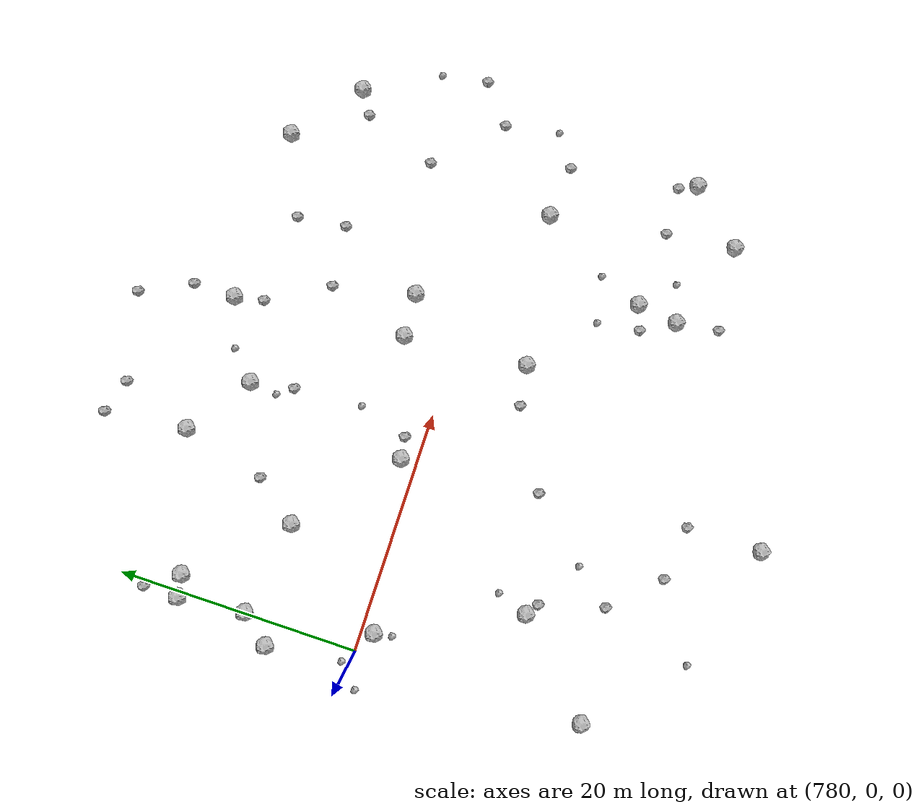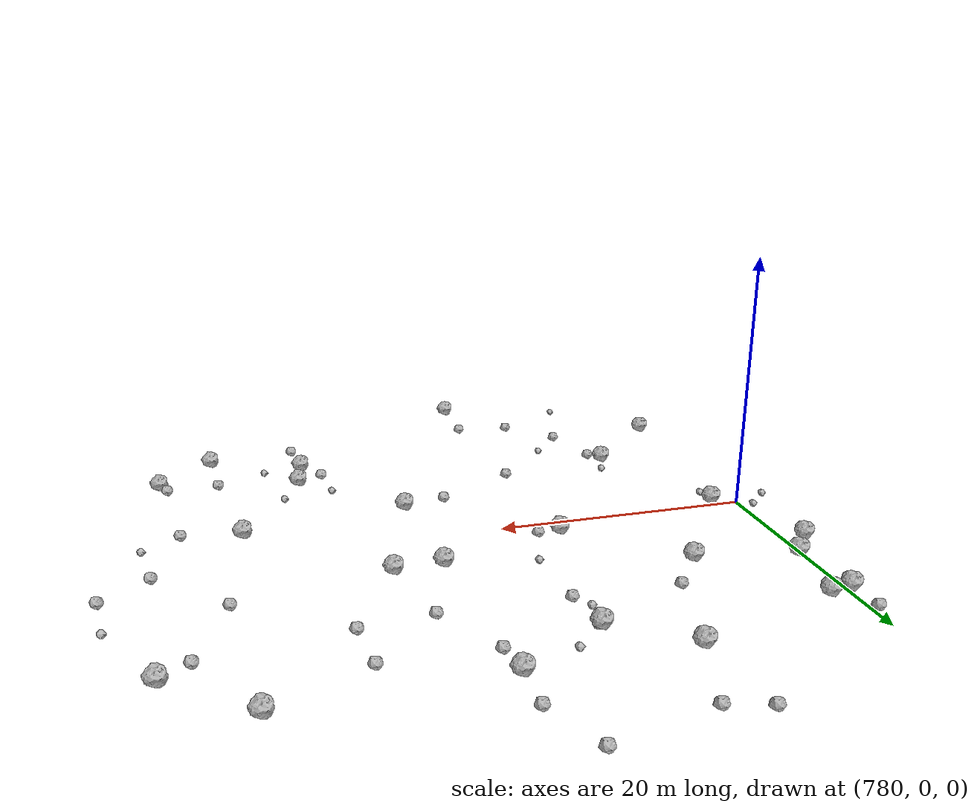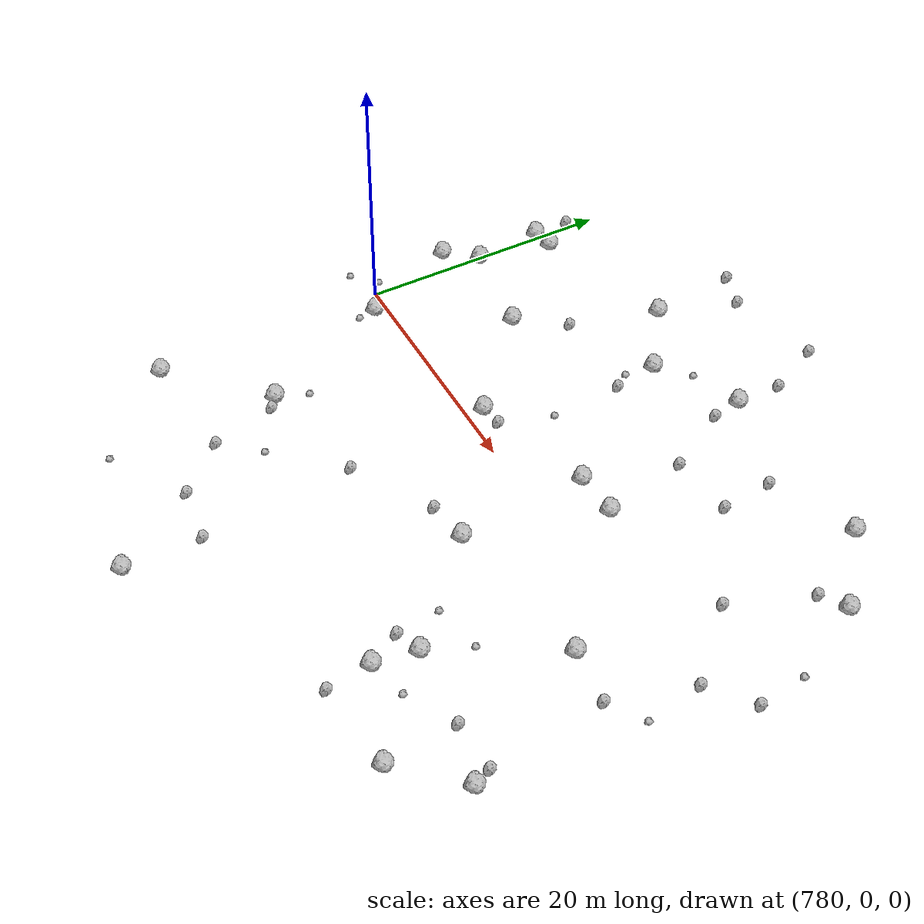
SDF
<sdf version="1.6">
 <world name="default">
  <include><uri>model://sun</uri></include>
  <model name="rock1_20_4">
   <include><uri>model://rock1</uri><pose>821.5237328324612 -19.71155116988725 0.5 0 0 0</pose></include>
  </model>
  <model name="rock1_20_5">
   <include><uri>model://rock1</uri><pose>819.3408966770852 -4.062593435215067 0.5 0 0 0</pose></include>
  </model>
  <model name="rock1_20_6">
   <include><uri>model://rock1</uri><pose>813.8019215811079 -16.833436652610494 0.5 0 0 0</pose></include>
  </model>
  <model name="rock1_20_7">
   <include><uri>model://rock1</uri><pose>778.2643350724036 6.956818468476683 0.5 0 0 0</pose></include>
  </model>
  <model name="rock1_20_8">
   <include><uri>model://rock1</uri><pose>797.9554170667134 15.235142399163323 0.5 0 0 0</pose></include>
  </model>
  <model name="rock1_20_9">
   <include><uri>model://rock1</uri><pose>788.0240473554131 8.174169909013266 0.5 0 0 0</pose></include>
  </model>
  <model name="rock1_20_10">
   <include><uri>model://rock1</uri><pose>824.9965964034074 14.582112920767521 0.5 0 0 0</pose></include>
  </model>
  <model name="rock1_20_11">
   <include><uri>model://rock1</uri><pose>819.2962018912546 19.140422712535774 0.5 0 0 0</pose></include>
  </model>
  <model name="rock1_20_12">
   <include><uri>model://rock1</uri><pose>780.4188803056809 -18.77020934637781 0.5 0 0 0</pose></include>
  </model>
  <model name="rock1_20_13">
   <include><uri>model://rock1</uri><pose>804.3450108342088 18.92974764495588 0.5 0 0 0</pose></include>
  </model>
  <model name="rock1_20_14">
   <include><uri>model://rock1</uri><pose>780.2249253635997 9.386086493412293 0.5 0 0 0</pose></include>
  </model>
  <model name="rock1_20_15">
   <include><uri>model://rock1</uri><pose>825.7585587596664 -15.23045358255802 0.5 0 0 0</pose></include>
  </model>
  <model name="rock1_20_16">
   <include><uri>model://rock1</uri><pose>792.6810508265742 18.90916895982363 0.5 0 0 0</pose></include>
  </model>
  <model name="rock1_20_17">
   <include><uri>model://rock1</uri><pose>809.3344900284699 4.583781229385423 0.5 0 0 0</pose></include>
  </model>
  <model name="rock1_20_18">
   <include><uri>model://rock1</uri><pose>805.6520337061339 4.368240215744642 0.5 0 0 0</pose></include>
  </model>
  <model name="rock1_20_19">
   <include><uri>model://rock1</uri><pose>779.6686763341825 14.937832869451256 0.5 0 0 0</pose></include>
  </model>
  <model name="rock1_20_20">
   <include><uri>model://rock1</uri><pose>814.3034859243119 -13.390475403955659 0.5 0 0 0</pose></include>
  </model>
  <model name="rock1_20_21">
   <include><uri>model://rock1</uri><pose>787.1563085408447 -12.082251397561862 0.5 0 0 0</pose></include>
  </model>
  <model name="rock1_20_22">
   <include><uri>model://rock1</uri><pose>781.4520373149711 15.26663061544425 0.5 0 0 0</pose></include>
  </model>
  <model name="rock1_20_23">
   <include><uri>model://rock1</uri><pose>795.8392942355595 1.3912950181931834 0.5 0 0 0</pose></include>
  </model>
  <model name="rock1_20_24">
   <include><uri>model://rock1</uri><pose>797.8539446061036 -28.665041408326122 0.5 0 0 0</pose></include>
  </model>
  <model name="rock1_20_25">
   <include><uri>model://rock1</uri><pose>806.4803551157047 -6.06613681827049 0.5 0 0 0</pose></include>
  </model>
  <model name="rock1_20_26">
   <include><uri>model://rock1</uri><pose>781.8972505637096 -0.9846805160802319 0.5 0 0 0</pose></include>
  </model>
  <model name="rock2_20_0">
   <include><uri>model://rock2</uri><pose>822.9948909293555 13.350462827802431 0.3 0 0 0</pose></include>
  </model>
  <model name="rock2_20_1">
   <include><uri>model://rock2</uri><pose>797.8303413734325 -22.508454499781482 0.3 0 0 0</pose></include>
  </model>
  <model name="rock2_20_2">
   <include><uri>model://rock2</uri><pose>791.8672378665955 25.915750639165637 0.3 0 0 0</pose></include>
  </model>
  <model name="rock2_20_3">
   <include><uri>model://rock2</uri><pose>802.2431950472893 26.85181549022913 0.3 0 0 0</pose></include>
  </model>
  <model name="rock2_20_4">
   <include><uri>model://rock2</uri><pose>788.148451782156 -12.821604228582043 0.3 0 0 0</pose></include>
  </model>
  <model name="rock2_20_5">
   <include><uri>model://rock2</uri><pose>793.2691570585573 -21.890808788128 0.3 0 0 0</pose></include>
  </model>
  <model name="rock2_20_6">
   <include><uri>model://rock2</uri><pose>790.7377293188608 11.869915586357635 0.3 0 0 0</pose></include>
  </model>
  <model name="rock2_20_7">
   <include><uri>model://rock2</uri><pose>812.2387574103946 -14.147378254191583 0.3 0 0 0</pose></include>
  </model>
  <model name="rock2_20_8">
   <include><uri>model://rock2</uri><pose>829.0456963116854 4.555582750702179 0.3 0 0 0</pose></include>
  </model>
  <model name="rock2_20_9">
   <include><uri>model://rock2</uri><pose>820.9265541522411 -13.925587817964335 0.3 0 0 0</pose></include>
  </model>
  <model name="rock2_20_10">
   <include><uri>model://rock2</uri><pose>804.3520805519938 22.586394660675992 0.3 0 0 0</pose></include>
  </model>
  <model name="rock2_20_11">
   <include><uri>model://rock2</uri><pose>813.0233725387922 12.068980704367277 0.3 0 0 0</pose></include>
  </model>
  <model name="rock2_20_12">
   <include><uri>model://rock2</uri><pose>823.8918339898858 -4.529401354621324 0.3 0 0 0</pose></include>
  </model>
  <model name="rock2_20_13">
   <include><uri>model://rock2</uri><pose>804.8021210199098 16.52689052762105 0.3 0 0 0</pose></include>
  </model>
  <model name="rock2_20_14">
   <include><uri>model://rock2</uri><pose>825.7700478816267 1.9118256053675324 0.3 0 0 0</pose></include>
  </model>
  <model name="rock2_20_15">
   <include><uri>model://rock2</uri><pose>803.075856131936 -6.587724109814232 0.3 0 0 0</pose></include>
  </model>
  <model name="rock2_20_16">
   <include><uri>model://rock2</uri><pose>779.5919916564144 17.875253628058076 0.3 0 0 0</pose></include>
  </model>
  <model name="rock2_20_17">
   <include><uri>model://rock2</uri><pose>797.6351781711502 1.6627008867555304 0.3 0 0 0</pose></include>
  </model>
  <model name="rock2_20_18">
   <include><uri>model://rock2</uri><pose>798.5698471964434 11.652077170628132 0.3 0 0 0</pose></include>
  </model>
  <model name="rock2_20_19">
   <include><uri>model://rock2</uri><pose>796.6721806143958 -10.21871966408234 0.3 0 0 0</pose></include>
  </model>
  <model name="rock2_20_20">
   <include><uri>model://rock2</uri><pose>807.7900742396205 11.47017544602187 0.3 0 0 0</pose></include>
  </model>
  <model name="rock2_20_21">
   <include><uri>model://rock2</uri><pose>820.5931014926458 6.991688660028423 0.3 0 0 0</pose></include>
  </model>
  <model name="rock2_20_22">
   <include><uri>model://rock2</uri><pose>814.2964425013781 -20.43247832636745 0.3 0 0 0</pose></include>
  </model>
  <model name="rock2_20_23">
   <include><uri>model://rock2</uri><pose>825.0630339762635 -13.770143134532955 0.3 0 0 0</pose></include>
  </model>
  <model name="rock2_20_24">
   <include><uri>model://rock2</uri><pose>789.6238398675966 -18.058334031685394 0.3 0 0 0</pose></include>
  </model>
  <model name="rock2_20_25">
   <include><uri>model://rock2</uri><pose>812.5373950886938 16.242065345521475 0.3 0 0 0</pose></include>
  </model>
  <model name="rock2_20_26">
   <include><uri>model://rock2</uri><pose>794.787465121287 25.060959202760316 0.3 0 0 0</pose></include>
  </model>
  <model name="rock3_20_0">
   <include><uri>model://rock3</uri><pose>800.1888366866548 17.45209451637139 0.2 0 0 0</pose></include>
  </model>
  <model name="rock3_20_1">
   <include><uri>model://rock3</uri><pose>777.1581908023526 -0.9617621864284658 0.2 0 0 0</pose></include>
  </model>
  <model name="rock3_20_2">
   <include><uri>model://rock3</uri><pose>798.9120518228335 5.839956934927557 0.2 0 0 0</pose></include>
  </model>
  <model name="rock3_20_3">
   <include><uri>model://rock3</uri><pose>811.7196432129854 -10.62751384082667 0.2 0 0 0</pose></include>
  </model>
  <model name="rock3_20_4">
   <include><uri>model://rock3</uri><pose>797.616912860321 12.886359650302623 0.2 0 0 0</pose></include>
  </model>
  <model name="rock3_20_5">
   <include><uri>model://rock3</uri><pose>788.0056765336361 -9.590845460585538 0.2 0 0 0</pose></include>
  </model>
  <model name="rock3_20_6">
   <include><uri>model://rock3</uri><pose>787.3008389205653 -25.59892626122503 0.2 0 0 0</pose></include>
  </model>
  <model name="rock3_20_7">
   <include><uri>model://rock3</uri><pose>828.3966901748819 8.468869947847459 0.2 0 0 0</pose></include>
  </model>
  <model name="rock3_20_8">
   <include><uri>model://rock3</uri><pose>778.9315330044217 0.7528615522975599 0.2 0 0 0</pose></include>
  </model>
  <model name="rock3_20_9">
   <include><uri>model://rock3</uri><pose>816.9518919754985 -16.03274389457561 0.2 0 0 0</pose></include>
  </model>
  <model name="rock3_20_10">
   <include><uri>model://rock3</uri><pose>815.6808567465328 -9.841233375807409 0.2 0 0 0</pose></include>
  </model>
  <model name="rock3_20_11">
   <include><uri>model://rock3</uri><pose>792.0685768103319 -15.112418974252446 0.2 0 0 0</pose></include>
  </model>
  <model name="rock3_20_12">
   <include><uri>model://rock3</uri><pose>798.2141138508567 15.30580165729365 0.2 0 0 0</pose></include>
  </model>
  <model name="rock3_20_13">
   <include><uri>model://rock3</uri><pose>782.0595335670632 -2.4744222803437665 0.2 0 0 0</pose></include>
  </model>
  <model name="rock3_20_14">
   <include><uri>model://rock3</uri><pose>826.592950066182 -2.7031645281011834 0.2 0 0 0</pose></include>
  </model>
 </world>
</sdf>
